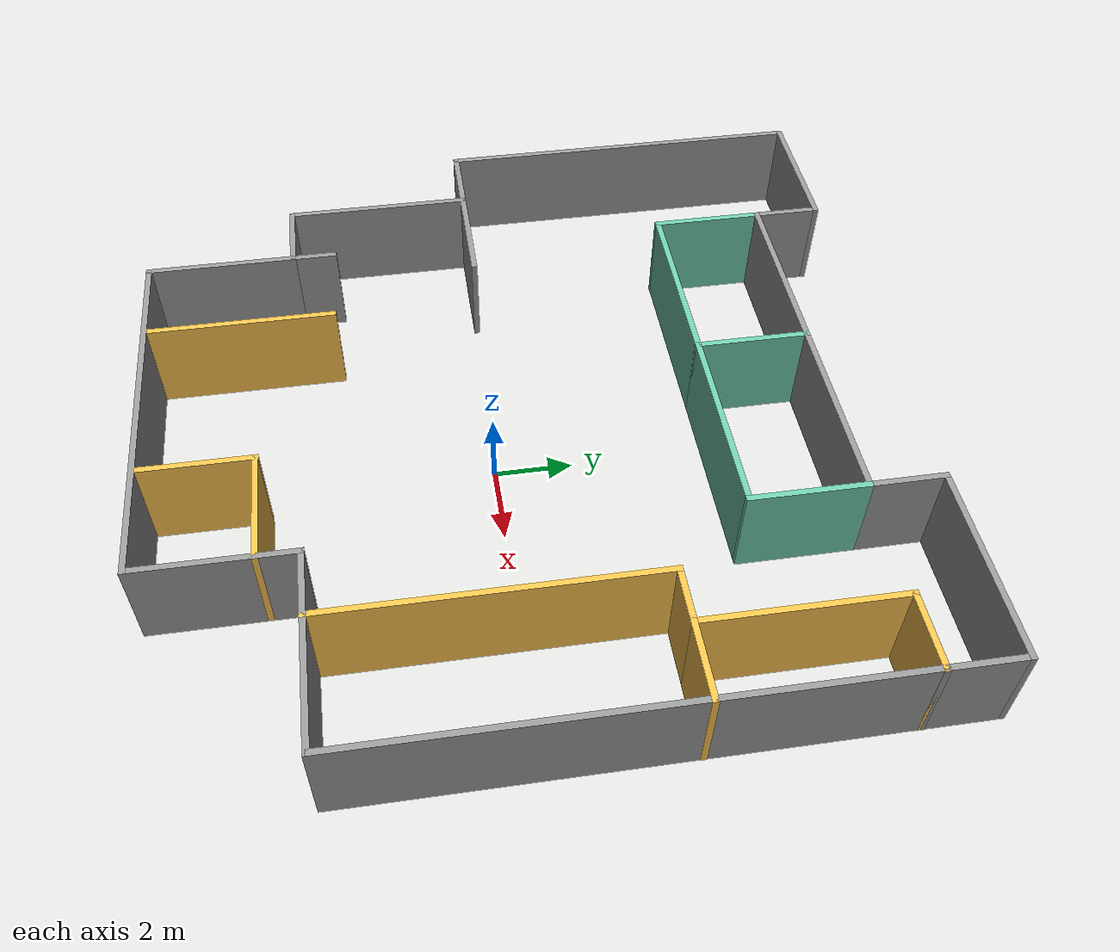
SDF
<?xml version='1.0'?>
<sdf version='1.6'>
  <model name='model'>
    <pose frame=''>-0.795 0.8 0 0 -0 0</pose>
    <link name='Wall_0'>
      <collision name='Wall_0_Collision'>
        <geometry>
          <box>
            <size>10 0.15 2.5</size>
          </box>
        </geometry>
        <pose frame=''>0 0 1.25 0 -0 0</pose>
      </collision>
      <visual name='Wall_0_Visual'>
        <pose frame=''>0 0 1.25 0 -0 0</pose>
        <geometry>
          <box>
            <size>10 0.15 2.5</size>
          </box>
        </geometry>
        <material>
          <script>
            <uri>file://media/materials/scripts/gazebo.material</uri>
            <name>Gazebo/Grey</name>
          </script>
          <ambient>1 1 1 1</ambient>
        </material>
        <meta>
          <layer>0</layer>
        </meta>
      </visual>
      <pose frame=''>-9.205 4.275 0 0 -0 -1.5708</pose>
    </link>
    <link name='Wall_10'>
      <collision name='Wall_10_Collision'>
        <geometry>
          <box>
            <size>5 0.15 2.5</size>
          </box>
        </geometry>
        <pose frame=''>0 0 1.25 0 -0 0</pose>
      </collision>
      <visual name='Wall_10_Visual'>
        <pose frame=''>0 0 1.25 0 -0 0</pose>
        <geometry>
          <box>
            <size>5 0.15 2.5</size>
          </box>
        </geometry>
        <material>
          <script>
            <uri>file://media/materials/scripts/gazebo.material</uri>
            <name>Gazebo/Grey</name>
          </script>
          <ambient>1 1 1 1</ambient>
        </material>
        <meta>
          <layer>0</layer>
        </meta>
      </visual>
      <pose frame=''>6.77 -5.5 0 0 -0 0</pose>
    </link>
    <link name='Wall_12'>
      <collision name='Wall_12_Collision'>
        <geometry>
          <box>
            <size>15 0.15 2.5</size>
          </box>
        </geometry>
        <pose frame=''>0 0 1.25 0 -0 0</pose>
      </collision>
      <visual name='Wall_12_Visual'>
        <pose frame=''>0 0 1.25 0 -0 0</pose>
        <geometry>
          <box>
            <size>15 0.15 2.5</size>
          </box>
        </geometry>
        <material>
          <script>
            <uri>file://media/materials/scripts/gazebo.material</uri>
            <name>Gazebo/Grey</name>
          </script>
          <ambient>1 1 1 1</ambient>
        </material>
        <meta>
          <layer>0</layer>
        </meta>
      </visual>
      <pose frame=''>9.195 1.925 0 0 -0 1.5708</pose>
    </link>
    <link name='Wall_13'>
      <collision name='Wall_13_Collision'>
        <geometry>
          <box>
            <size>5 0.15 2.5</size>
          </box>
        </geometry>
        <pose frame=''>0 0 1.25 0 -0 0</pose>
      </collision>
      <visual name='Wall_13_Visual'>
        <pose frame=''>0 0 1.25 0 -0 0</pose>
        <geometry>
          <box>
            <size>5 0.15 2.5</size>
          </box>
        </geometry>
        <material>
          <script>
            <uri>file://media/materials/scripts/gazebo.material</uri>
            <name>Gazebo/Grey</name>
          </script>
          <ambient>1 1 1 1</ambient>
        </material>
        <meta>
          <layer>0</layer>
        </meta>
      </visual>
      <pose frame=''>6.77 9.35 0 0 -0 3.14159</pose>
    </link>
    <link name='Wall_14'>
      <collision name='Wall_14_Collision'>
        <geometry>
          <box>
            <size>2 0.15 2.5</size>
          </box>
        </geometry>
        <pose frame=''>0 0 1.25 0 -0 0</pose>
      </collision>
      <visual name='Wall_14_Visual'>
        <pose frame=''>0 0 1.25 0 -0 0</pose>
        <geometry>
          <box>
            <size>2 0.15 2.5</size>
          </box>
        </geometry>
        <material>
          <script>
            <uri>file://media/materials/scripts/gazebo.material</uri>
            <name>Gazebo/Grey</name>
          </script>
          <ambient>1 1 1 1</ambient>
        </material>
        <meta>
          <layer>0</layer>
        </meta>
      </visual>
      <pose frame=''>4.345 8.425 0 0 -0 -1.5708</pose>
    </link>
    <link name='Wall_15'>
      <collision name='Wall_15_Collision'>
        <geometry>
          <box>
            <size>10 0.15 2.5</size>
          </box>
        </geometry>
        <pose frame=''>0 0 1.25 0 -0 0</pose>
      </collision>
      <visual name='Wall_15_Visual'>
        <pose frame=''>0 0 1.25 0 -0 0</pose>
        <geometry>
          <box>
            <size>10 0.15 2.5</size>
          </box>
        </geometry>
        <material>
          <script>
            <uri>file://media/materials/scripts/gazebo.material</uri>
            <name>Gazebo/Grey</name>
          </script>
          <ambient>1 1 1 1</ambient>
        </material>
        <meta>
          <layer>0</layer>
        </meta>
      </visual>
      <pose frame=''>-0.58 7.5 0 0 -0 3.14159</pose>
    </link>
    <link name='Wall_16'>
      <collision name='Wall_16_Collision'>
        <geometry>
          <box>
            <size>1.75 0.15 2.5</size>
          </box>
        </geometry>
        <pose frame=''>0 0 1.25 0 -0 0</pose>
      </collision>
      <visual name='Wall_16_Visual'>
        <pose frame=''>0 0 1.25 0 -0 0</pose>
        <geometry>
          <box>
            <size>1.75 0.15 2.5</size>
          </box>
        </geometry>
        <material>
          <script>
            <uri>file://media/materials/scripts/gazebo.material</uri>
            <name>Gazebo/Grey</name>
          </script>
          <ambient>1 1 1 1</ambient>
        </material>
        <meta>
          <layer>0</layer>
        </meta>
      </visual>
      <pose frame=''>-5.505 8.3 0 0 -0 1.5708</pose>
    </link>
    <link name='Wall_18'>
      <collision name='Wall_18_Collision'>
        <geometry>
          <box>
            <size>3 0.15 2.5</size>
          </box>
        </geometry>
        <pose frame=''>0 0 1.25 0 -0 0</pose>
      </collision>
      <visual name='Wall_18_Visual'>
        <pose frame=''>0 0 1.25 0 -0 0</pose>
        <geometry>
          <box>
            <size>3 0.15 2.5</size>
          </box>
        </geometry>
        <material>
          <script>
            <uri>file://media/materials/scripts/gazebo.material</uri>
            <name>Gazebo/Grey</name>
          </script>
          <ambient>0.435294 0.796078 0.67451 1</ambient>
        </material>
        <meta>
          <layer>0</layer>
        </meta>
      </visual>
      <pose frame=''>-5.505 6.075 0 0 -0 -1.5708</pose>
    </link>
    <link name='Wall_19'>
      <collision name='Wall_19_Collision'>
        <geometry>
          <box>
            <size>5 0.15 2.5</size>
          </box>
        </geometry>
        <pose frame=''>0 0 1.25 0 -0 0</pose>
      </collision>
      <visual name='Wall_19_Visual'>
        <pose frame=''>0 0 1.25 0 -0 0</pose>
        <geometry>
          <box>
            <size>5 0.15 2.5</size>
          </box>
        </geometry>
        <material>
          <script>
            <uri>file://media/materials/scripts/gazebo.material</uri>
            <name>Gazebo/Grey</name>
          </script>
          <ambient>0.435294 0.796078 0.67451 1</ambient>
        </material>
        <meta>
          <layer>0</layer>
        </meta>
      </visual>
      <pose frame=''>-3.08 4.65 0 0 -0 0</pose>
    </link>
    <link name='Wall_2'>
      <collision name='Wall_2_Collision'>
        <geometry>
          <box>
            <size>3.85 0.15 2.5</size>
          </box>
        </geometry>
        <pose frame=''>0 0 1.25 0 -0 0</pose>
      </collision>
      <visual name='Wall_2_Visual'>
        <pose frame=''>0 0 1.25 0 -0 0</pose>
        <geometry>
          <box>
            <size>3.85 0.15 2.5</size>
          </box>
        </geometry>
        <material>
          <script>
            <uri>file://media/materials/scripts/gazebo.material</uri>
            <name>Gazebo/Grey</name>
          </script>
          <ambient>1 1 1 1</ambient>
        </material>
        <meta>
          <layer>0</layer>
        </meta>
      </visual>
      <pose frame=''>-7.355 9.2 0 0 -0 0</pose>
    </link>
    <link name='Wall_20'>
      <collision name='Wall_20_Collision'>
        <geometry>
          <box>
            <size>3 0.15 2.5</size>
          </box>
        </geometry>
        <pose frame=''>0 0 1.25 0 -0 0</pose>
      </collision>
      <visual name='Wall_20_Visual'>
        <pose frame=''>0 0 1.25 0 -0 0</pose>
        <geometry>
          <box>
            <size>3 0.15 2.5</size>
          </box>
        </geometry>
        <material>
          <script>
            <uri>file://media/materials/scripts/gazebo.material</uri>
            <name>Gazebo/Grey</name>
          </script>
          <ambient>0.435294 0.796078 0.67451 1</ambient>
        </material>
        <meta>
          <layer>0</layer>
        </meta>
      </visual>
      <pose frame=''>-0.655 6.075 0 0 -0 1.5708</pose>
    </link>
    <link name='Wall_21'>
      <collision name='Wall_21_Collision'>
        <geometry>
          <box>
            <size>5 0.15 2.5</size>
          </box>
        </geometry>
        <pose frame=''>0 0 1.25 0 -0 0</pose>
      </collision>
      <visual name='Wall_21_Visual'>
        <pose frame=''>0 0 1.25 0 -0 0</pose>
        <geometry>
          <box>
            <size>5 0.15 2.5</size>
          </box>
        </geometry>
        <material>
          <script>
            <uri>file://media/materials/scripts/gazebo.material</uri>
            <name>Gazebo/Grey</name>
          </script>
          <ambient>0.435294 0.796078 0.67451 1</ambient>
        </material>
        <meta>
          <layer>0</layer>
        </meta>
      </visual>
      <pose frame=''>1.77 4.65 0 0 -0 0</pose>
    </link>
    <link name='Wall_22'>
      <collision name='Wall_22_Collision'>
        <geometry>
          <box>
            <size>3 0.15 2.5</size>
          </box>
        </geometry>
        <pose frame=''>0 0 1.25 0 -0 0</pose>
      </collision>
      <visual name='Wall_22_Visual'>
        <pose frame=''>0 0 1.25 0 -0 0</pose>
        <geometry>
          <box>
            <size>3 0.15 2.5</size>
          </box>
        </geometry>
        <material>
          <script>
            <uri>file://media/materials/scripts/gazebo.material</uri>
            <name>Gazebo/Grey</name>
          </script>
          <ambient>0.435294 0.796078 0.67451 1</ambient>
        </material>
        <meta>
          <layer>0</layer>
        </meta>
      </visual>
      <pose frame=''>4.345 6.075 0 0 -0 -1.5708</pose>
    </link>
    <link name='Wall_24'>
      <collision name='Wall_24_Collision'>
        <geometry>
          <box>
            <size>0.16 0.15 2.5</size>
          </box>
        </geometry>
        <pose frame=''>0 0 1.25 0 -0 0</pose>
      </collision>
      <visual name='Wall_24_Visual'>
        <pose frame=''>0 0 1.25 0 -0 0</pose>
        <geometry>
          <box>
            <size>0.16 0.15 2.5</size>
          </box>
        </geometry>
        <material>
          <script>
            <uri>file://media/materials/scripts/gazebo.material</uri>
            <name>Gazebo/Grey</name>
          </script>
          <ambient>1 1 1 1</ambient>
        </material>
        <meta>
          <layer>0</layer>
        </meta>
      </visual>
      <pose frame=''>9.2 7.5 0 0 -0 0</pose>
    </link>
    <link name='Wall_25'>
      <collision name='Wall_25_Collision'>
        <geometry>
          <box>
            <size>2 0.15 2.5</size>
          </box>
        </geometry>
        <pose frame=''>0 0 1.25 0 -0 0</pose>
      </collision>
      <visual name='Wall_25_Visual'>
        <pose frame=''>0 0 1.25 0 -0 0</pose>
        <geometry>
          <box>
            <size>2 0.15 2.5</size>
          </box>
        </geometry>
        <material>
          <script>
            <uri>file://media/materials/scripts/gazebo.material</uri>
            <name>Gazebo/Grey</name>
          </script>
          <ambient>1 0.764706 0.305882 1</ambient>
        </material>
        <meta>
          <layer>0</layer>
        </meta>
      </visual>
      <pose frame=''>8.28 7.5 0 0 -0 3.14159</pose>
    </link>
    <link name='Wall_26'>
      <collision name='Wall_26_Collision'>
        <geometry>
          <box>
            <size>5 0.15 2.5</size>
          </box>
        </geometry>
        <pose frame=''>0 0 1.25 0 -0 0</pose>
      </collision>
      <visual name='Wall_26_Visual'>
        <pose frame=''>0 0 1.25 0 -0 0</pose>
        <geometry>
          <box>
            <size>5 0.15 2.5</size>
          </box>
        </geometry>
        <material>
          <script>
            <uri>file://media/materials/scripts/gazebo.material</uri>
            <name>Gazebo/Grey</name>
          </script>
          <ambient>1 0.764706 0.305882 1</ambient>
        </material>
        <meta>
          <layer>0</layer>
        </meta>
      </visual>
      <pose frame=''>7.355 5.075 0 0 -0 -1.5708</pose>
    </link>
    <link name='Wall_29'>
      <collision name='Wall_29_Collision'>
        <geometry>
          <box>
            <size>2 0.15 2.5</size>
          </box>
        </geometry>
        <pose frame=''>0 0 1.25 0 -0 0</pose>
      </collision>
      <visual name='Wall_29_Visual'>
        <pose frame=''>0 0 1.25 0 -0 0</pose>
        <geometry>
          <box>
            <size>2 0.15 2.5</size>
          </box>
        </geometry>
        <material>
          <script>
            <uri>file://media/materials/scripts/gazebo.material</uri>
            <name>Gazebo/Grey</name>
          </script>
          <ambient>1 0.764706 0.305882 1</ambient>
        </material>
        <meta>
          <layer>0</layer>
        </meta>
      </visual>
      <pose frame=''>8.28 2.65 0 0 -0 0</pose>
    </link>
    <link name='Wall_3'>
      <collision name='Wall_3_Collision'>
        <geometry>
          <box>
            <size>2 0.15 2.5</size>
          </box>
        </geometry>
        <pose frame=''>0 0 1.25 0 -0 0</pose>
      </collision>
      <visual name='Wall_3_Visual'>
        <pose frame=''>0 0 1.25 0 -0 0</pose>
        <geometry>
          <box>
            <size>2 0.15 2.5</size>
          </box>
        </geometry>
        <material>
          <script>
            <uri>file://media/materials/scripts/gazebo.material</uri>
            <name>Gazebo/Grey</name>
          </script>
          <ambient>1 1 1 1</ambient>
        </material>
        <meta>
          <layer>0</layer>
        </meta>
      </visual>
      <pose frame=''>-8.28 -0.65 0 0 -0 0</pose>
    </link>
    <link name='Wall_31'>
      <collision name='Wall_31_Collision'>
        <geometry>
          <box>
            <size>1.5 0.15 2.5</size>
          </box>
        </geometry>
        <pose frame=''>0 0 1.25 0 -0 0</pose>
      </collision>
      <visual name='Wall_31_Visual'>
        <pose frame=''>0 0 1.25 0 -0 0</pose>
        <geometry>
          <box>
            <size>1.5 0.15 2.5</size>
          </box>
        </geometry>
        <material>
          <script>
            <uri>file://media/materials/scripts/gazebo.material</uri>
            <name>Gazebo/Grey</name>
          </script>
          <ambient>1 0.764706 0.305882 1</ambient>
        </material>
        <meta>
          <layer>0</layer>
        </meta>
      </visual>
      <pose frame=''>6.68 2.65 0 0 -0 3.14159</pose>
    </link>
    <link name='Wall_32'>
      <collision name='Wall_32_Collision'>
        <geometry>
          <box>
            <size>8.3 0.15 2.5</size>
          </box>
        </geometry>
        <pose frame=''>0 0 1.25 0 -0 0</pose>
      </collision>
      <visual name='Wall_32_Visual'>
        <pose frame=''>0 0 1.25 0 -0 0</pose>
        <geometry>
          <box>
            <size>8.3 0.15 2.5</size>
          </box>
        </geometry>
        <material>
          <script>
            <uri>file://media/materials/scripts/gazebo.material</uri>
            <name>Gazebo/Grey</name>
          </script>
          <ambient>1 0.764706 0.305882 1</ambient>
        </material>
        <meta>
          <layer>0</layer>
        </meta>
      </visual>
      <pose frame=''>6.005 -1.425 0 0 -0 -1.5708</pose>
    </link>
    <link name='Wall_34'>
      <collision name='Wall_34_Collision'>
        <geometry>
          <box>
            <size>3 0.15 2.5</size>
          </box>
        </geometry>
        <pose frame=''>0 0 1.25 0 -0 0</pose>
      </collision>
      <visual name='Wall_34_Visual'>
        <pose frame=''>0 0 1.25 0 -0 0</pose>
        <geometry>
          <box>
            <size>3 0.15 2.5</size>
          </box>
        </geometry>
        <material>
          <script>
            <uri>file://media/materials/scripts/gazebo.material</uri>
            <name>Gazebo/Grey</name>
          </script>
          <ambient>1 0.764706 0.305882 1</ambient>
        </material>
        <meta>
          <layer>0</layer>
        </meta>
      </visual>
      <pose frame=''>1.495 -7.925 0 0 -0 1.5708</pose>
    </link>
    <link name='Wall_35'>
      <collision name='Wall_35_Collision'>
        <geometry>
          <box>
            <size>3 0.15 2.5</size>
          </box>
        </geometry>
        <pose frame=''>0 0 1.25 0 -0 0</pose>
      </collision>
      <visual name='Wall_35_Visual'>
        <pose frame=''>0 0 1.25 0 -0 0</pose>
        <geometry>
          <box>
            <size>3 0.15 2.5</size>
          </box>
        </geometry>
        <material>
          <script>
            <uri>file://media/materials/scripts/gazebo.material</uri>
            <name>Gazebo/Grey</name>
          </script>
          <ambient>1 0.764706 0.305882 1</ambient>
        </material>
        <meta>
          <layer>0</layer>
        </meta>
      </visual>
      <pose frame=''>2.92 -6.5 0 0 -0 0</pose>
    </link>
    <link name='Wall_36'>
      <collision name='Wall_36_Collision'>
        <geometry>
          <box>
            <size>2.5 0.15 2.5</size>
          </box>
        </geometry>
        <pose frame=''>0 0 1.25 0 -0 0</pose>
      </collision>
      <visual name='Wall_36_Visual'>
        <pose frame=''>0 0 1.25 0 -0 0</pose>
        <geometry>
          <box>
            <size>2.5 0.15 2.5</size>
          </box>
        </geometry>
        <material>
          <script>
            <uri>file://media/materials/scripts/gazebo.material</uri>
            <name>Gazebo/Grey</name>
          </script>
          <ambient>1 1 1 1</ambient>
        </material>
        <meta>
          <layer>0</layer>
        </meta>
      </visual>
      <pose frame=''>-4.33 -9.35 0 0 -0 0</pose>
    </link>
    <link name='Wall_39'>
      <collision name='Wall_39_Collision'>
        <geometry>
          <box>
            <size>5 0.15 2.5</size>
          </box>
        </geometry>
        <pose frame=''>0 0 1.25 0 -0 0</pose>
      </collision>
      <visual name='Wall_39_Visual'>
        <pose frame=''>0 0 1.25 0 -0 0</pose>
        <geometry>
          <box>
            <size>5 0.15 2.5</size>
          </box>
        </geometry>
        <material>
          <script>
            <uri>file://media/materials/scripts/gazebo.material</uri>
            <name>Gazebo/Grey</name>
          </script>
          <ambient>1 0.764706 0.305882 1</ambient>
        </material>
        <meta>
          <layer>0</layer>
        </meta>
      </visual>
      <pose frame=''>-3.155 -6.925 0 0 -0 1.5708</pose>
    </link>
    <link name='Wall_4'>
      <collision name='Wall_4_Collision'>
        <geometry>
          <box>
            <size>5 0.15 2.5</size>
          </box>
        </geometry>
        <pose frame=''>0 0 1.25 0 -0 0</pose>
      </collision>
      <visual name='Wall_4_Visual'>
        <pose frame=''>0 0 1.25 0 -0 0</pose>
        <geometry>
          <box>
            <size>5 0.15 2.5</size>
          </box>
        </geometry>
        <material>
          <script>
            <uri>file://media/materials/scripts/gazebo.material</uri>
            <name>Gazebo/Grey</name>
          </script>
          <ambient>1 1 1 1</ambient>
        </material>
        <meta>
          <layer>0</layer>
        </meta>
      </visual>
      <pose frame=''>-7.355 -3.075 0 0 -0 -1.5708</pose>
    </link>
    <link name='Wall_40'>
      <collision name='Wall_40_Collision'>
        <geometry>
          <box>
            <size>3 0.15 2.5</size>
          </box>
        </geometry>
        <pose frame=''>0 0 1.25 0 -0 0</pose>
      </collision>
      <visual name='Wall_40_Visual'>
        <pose frame=''>0 0 1.25 0 -0 0</pose>
        <geometry>
          <box>
            <size>3 0.15 2.5</size>
          </box>
        </geometry>
        <material>
          <script>
            <uri>file://media/materials/scripts/gazebo.material</uri>
            <name>Gazebo/Grey</name>
          </script>
          <ambient>0 0 0 1</ambient>
        </material>
        <meta>
          <layer>0</layer>
        </meta>
      </visual>
      <pose frame=''>-5.93 -0.65 0 0 -0 0</pose>
    </link>
    <link name='Wall_42'>
      <collision name='Wall_42_Collision'>
        <geometry>
          <box>
            <size>1.25 0.15 2.5</size>
          </box>
        </geometry>
        <pose frame=''>0 0 1.25 0 -0 0</pose>
      </collision>
      <visual name='Wall_42_Visual'>
        <pose frame=''>0 0 1.25 0 -0 0</pose>
        <geometry>
          <box>
            <size>1.25 0.15 2.5</size>
          </box>
        </geometry>
        <material>
          <script>
            <uri>file://media/materials/scripts/gazebo.material</uri>
            <name>Gazebo/Grey</name>
          </script>
          <ambient>0 0 0 1</ambient>
        </material>
        <meta>
          <layer>0</layer>
        </meta>
      </visual>
      <pose frame=''>-5.505 -4.95 0 0 -0 1.5708</pose>
    </link>
    <link name='Wall_5'>
      <collision name='Wall_5_Collision'>
        <geometry>
          <box>
            <size>2 0.15 2.5</size>
          </box>
        </geometry>
        <pose frame=''>0 0 1.25 0 -0 0</pose>
      </collision>
      <visual name='Wall_5_Visual'>
        <pose frame=''>0 0 1.25 0 -0 0</pose>
        <geometry>
          <box>
            <size>2 0.15 2.5</size>
          </box>
        </geometry>
        <material>
          <script>
            <uri>file://media/materials/scripts/gazebo.material</uri>
            <name>Gazebo/Grey</name>
          </script>
          <ambient>1 1 1 1</ambient>
        </material>
        <meta>
          <layer>0</layer>
        </meta>
      </visual>
      <pose frame=''>-6.43 -5.5 0 0 -0 0</pose>
    </link>
    <link name='Wall_6'>
      <collision name='Wall_6_Collision'>
        <geometry>
          <box>
            <size>4 0.15 2.5</size>
          </box>
        </geometry>
        <pose frame=''>0 0 1.25 0 -0 0</pose>
      </collision>
      <visual name='Wall_6_Visual'>
        <pose frame=''>0 0 1.25 0 -0 0</pose>
        <geometry>
          <box>
            <size>4 0.15 2.5</size>
          </box>
        </geometry>
        <material>
          <script>
            <uri>file://media/materials/scripts/gazebo.material</uri>
            <name>Gazebo/Grey</name>
          </script>
          <ambient>1 1 1 1</ambient>
        </material>
        <meta>
          <layer>0</layer>
        </meta>
      </visual>
      <pose frame=''>-5.505 -7.425 0 0 -0 -1.5708</pose>
    </link>
    <link name='Wall_8'>
      <collision name='Wall_8_Collision'>
        <geometry>
          <box>
            <size>10 0.15 2.5</size>
          </box>
        </geometry>
        <pose frame=''>0 0 1.25 0 -0 0</pose>
      </collision>
      <visual name='Wall_8_Visual'>
        <pose frame=''>0 0 1.25 0 -0 0</pose>
        <geometry>
          <box>
            <size>10 0.15 2.5</size>
          </box>
        </geometry>
        <material>
          <script>
            <uri>file://media/materials/scripts/gazebo.material</uri>
            <name>Gazebo/Grey</name>
          </script>
          <ambient>1 1 1 1</ambient>
        </material>
        <meta>
          <layer>0</layer>
        </meta>
      </visual>
      <pose frame=''>-0.58 -9.35 0 0 -0 0</pose>
    </link>
    <link name='Wall_9'>
      <collision name='Wall_9_Collision'>
        <geometry>
          <box>
            <size>4 0.15 2.5</size>
          </box>
        </geometry>
        <pose frame=''>0 0 1.25 0 -0 0</pose>
      </collision>
      <visual name='Wall_9_Visual'>
        <pose frame=''>0 0 1.25 0 -0 0</pose>
        <geometry>
          <box>
            <size>4 0.15 2.5</size>
          </box>
        </geometry>
        <material>
          <script>
            <uri>file://media/materials/scripts/gazebo.material</uri>
            <name>Gazebo/Grey</name>
          </script>
          <ambient>1 1 1 1</ambient>
        </material>
        <meta>
          <layer>0</layer>
        </meta>
      </visual>
      <pose frame=''>4.345 -7.425 0 0 -0 1.5708</pose>
    </link>
    <static>1</static>
  </model>
</sdf>
